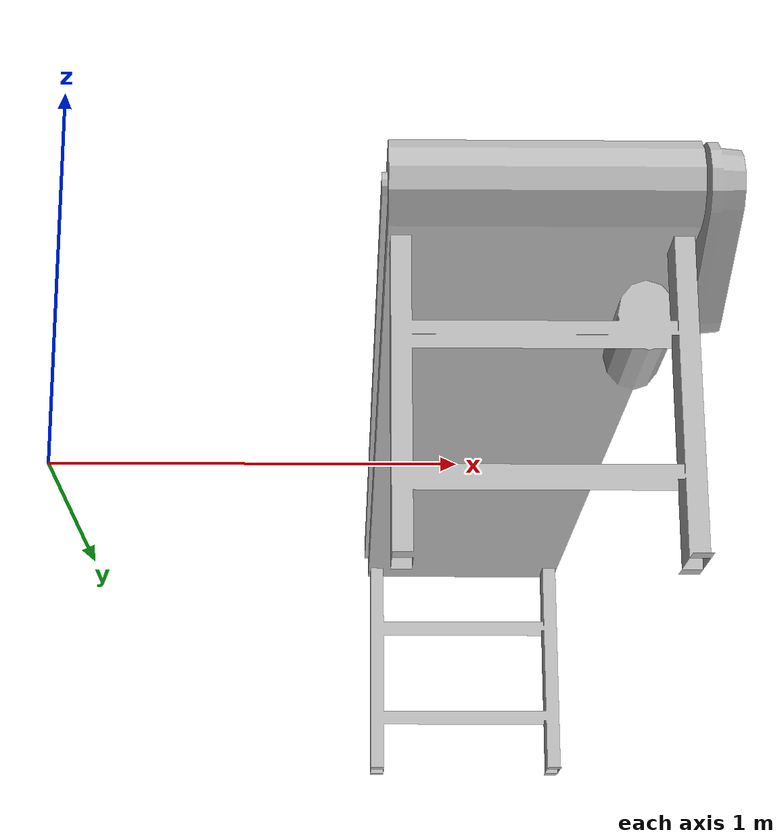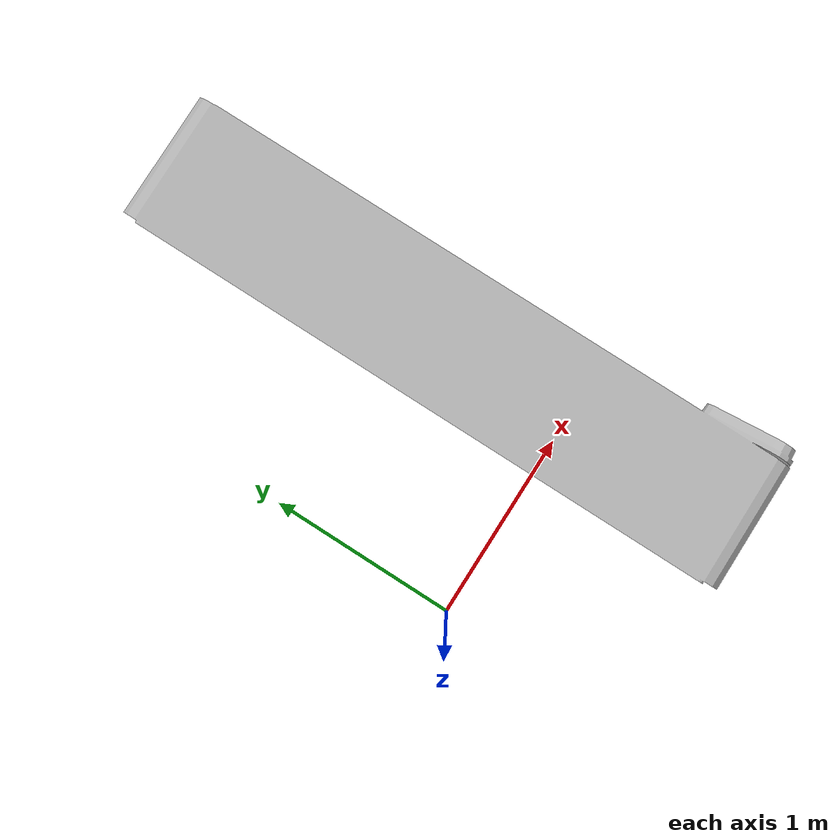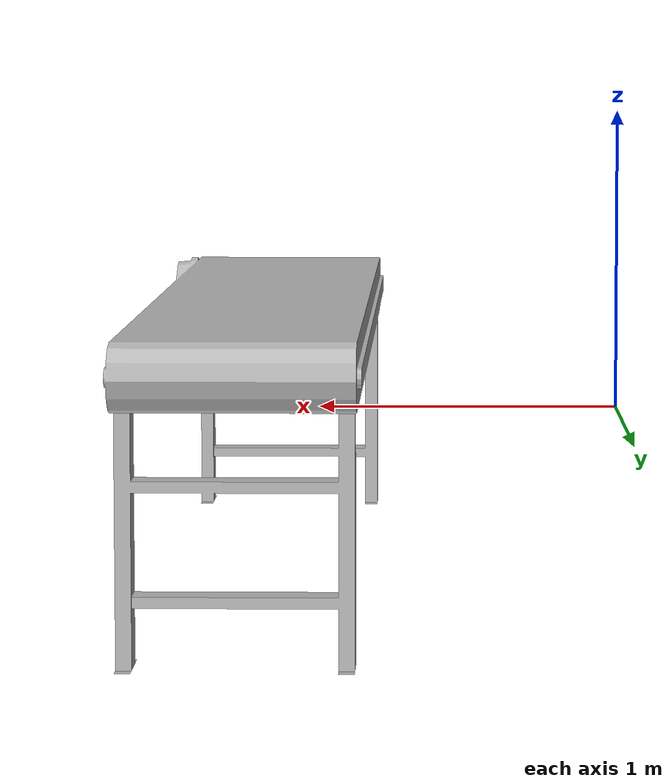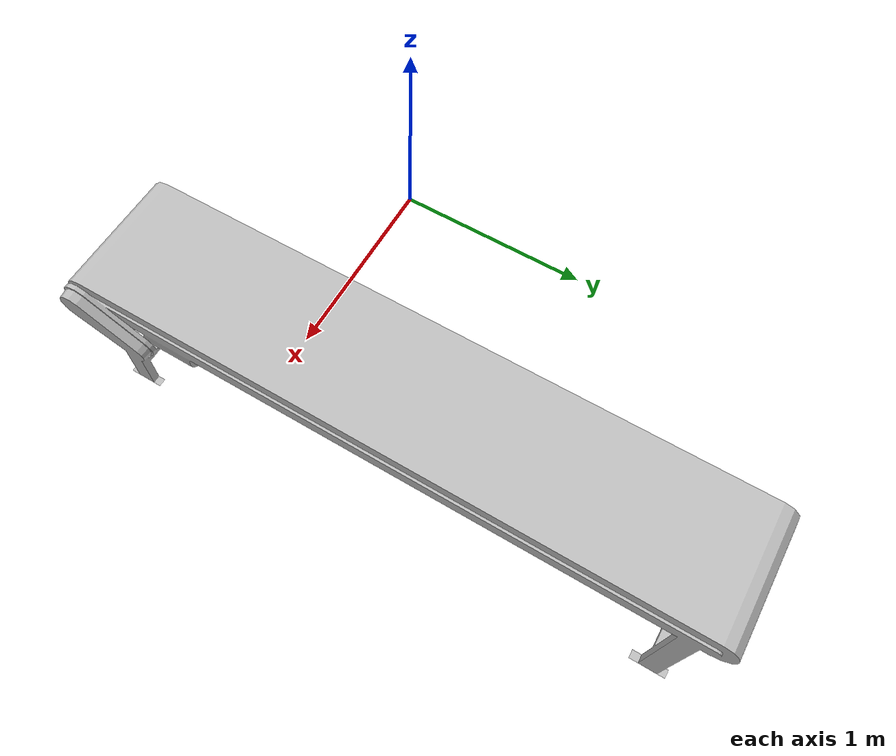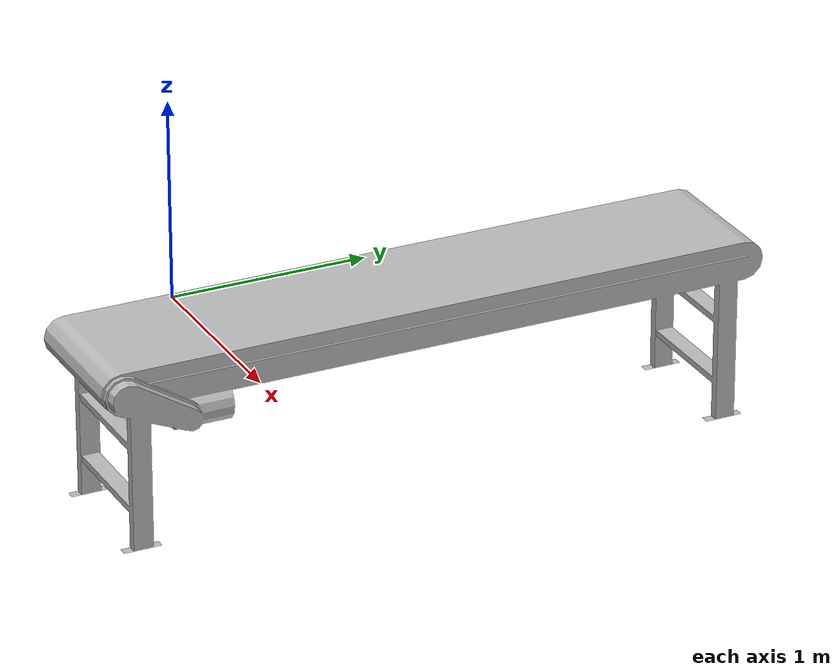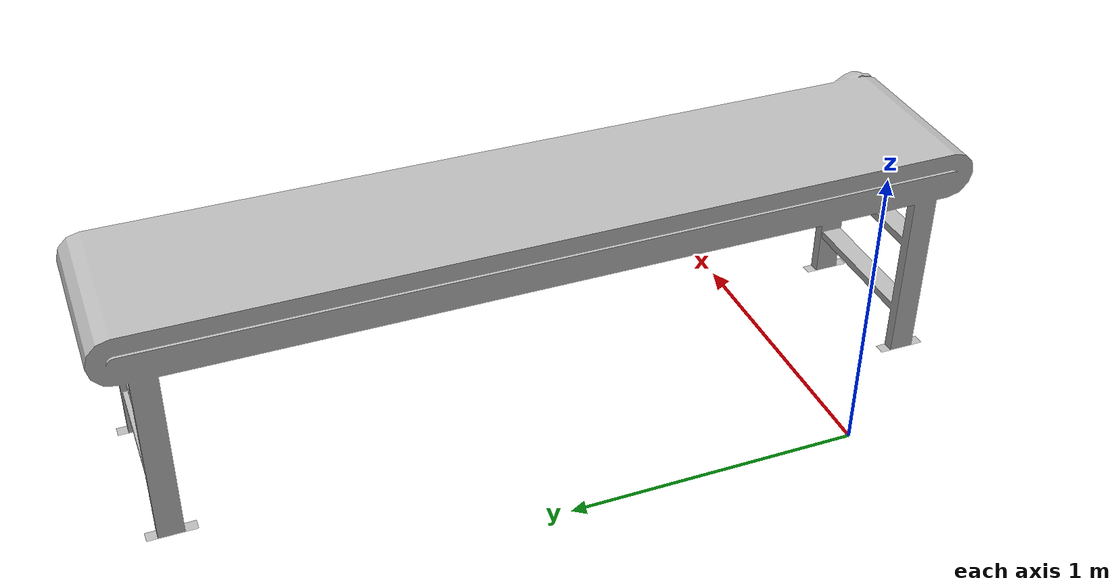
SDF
<?xml version="1.0" encoding="UTF-8"?>
<!-- |    This document was autogenerated by xacro4sdf from model.sdf.xacro            | -->
<!-- |    EDITING THIS FILE BY HAND IS NOT RECOMMENDED                                 | -->
<sdf version="1.6">
	<!-- === NOTE: leave only one of the following 3 options uncommented ====== -->
	<!-- single conveyor belt without unique id -->
	<!-- uncomment to generate conveyor belt a (unflipped) -->
	<!-- uncomment to generate conveyor belt a (flipped) -->
	<!-- e.g input 3.14159 if conveyor is flipped -->
	<!-- generic conveyor properties -->
	<model name="conveyor_belt_a">
		<!-- Fixed frame that can be used to refer to the belt's global pose -->
		<model name="conveyor_belt_fixed">
			<static>true</static>
			<pose>1.16 4.2 0.8 0 0 -1.57079</pose>
			<link name="link">
				<pose>0 0 0 0 0 0</pose>
			</link>
		</model>
		<!-- Moving component that extends and resets a prismatic joint -->
		<model name="conveyor_belt_moving">
			<allow_auto_disable>0</allow_auto_disable>
			<static>false</static>
			<pose>1.14 -3.91 0.35 0 0 -1.57079</pose>
			<link name="belt">
				<pose>-5 0 0 0 0 0</pose>
				<inertial>
					<inertia>
						<ixx>3.8185</ixx>
						<ixy>0</ixy>
						<ixz>0</ixz>
						<iyy>1781.5</iyy>
						<iyz>0</iyz>
						<izz>1784.72</izz>
					</inertia>
					<mass>100</mass>
				</inertial>
				<!--Uncomment for debugging -->
				<collision name="belt_collision">
					<geometry>
						<box>
							<size>3.3 0.67461 0.18862</size>
						</box>
					</geometry>
					<surface>
						<friction>
							<ode>
								<mu>50.0</mu>
								<mu2>50.0</mu2>
							</ode>
							<torsional>
								<coefficient>1000.0</coefficient>
								<patch_radius>0.1</patch_radius>
							</torsional>
						</friction>
					</surface>
				</collision>
			</link>
		</model>
		<!-- Moving component that extends and resets a prismatic joint -->
		<model name="conveyor_belt_visual">
			<allow_auto_disable>0</allow_auto_disable>
			<static>true</static>
			<pose>1.16 -4.12 0.35 0 0 -1.57079</pose>
			<link name="belt">
				<pose>-4.8 0 0 0 0 0</pose>
				<!-- uncomment for debugging -->
				<visual name="belt_visual">
					<pose>-2.05 1.2 -0.815 0 0 0</pose>
					<geometry>
						<mesh>
							<uri>model://conveyor_belt/meshes/conveyor.dae</uri>
						</mesh>
					</geometry>
				</visual>
			</link>
		</model>
		<joint name="belt_joint" type="prismatic">
			<parent>conveyor_belt_fixed::link</parent>
			<child>conveyor_belt_moving::belt</child>
			<axis>
				<xyz>1 0 0</xyz>
				<limit>
					<lower>0</lower>
					<upper>1.0</upper>
				</limit>
			</axis>
		</joint>
		<joint name="belt_joint_visual" type="fixed">
			<parent>conveyor_belt_fixed::link</parent>
			<child>conveyor_belt_visual::belt</child>
		</joint>
		<plugin filename="libROSConveyorBeltPlugin.so" name="conveyor_belt_plugin">
			<robot_namespace>/machinery</robot_namespace>
			<conveyor_name>conveyor_belt_a</conveyor_name>
			<link>conveyor_belt_a::conveyor_belt_moving::belt</link>
			<cb_rotation_angle>0.0</cb_rotation_angle>
			<!-- conveyor belt rotation angle in radians -->
			<retraction_distance>0.01</retraction_distance>
			<power>0</power>
			<update_rate>10</update_rate>
		</plugin>
	</model>
</sdf>
